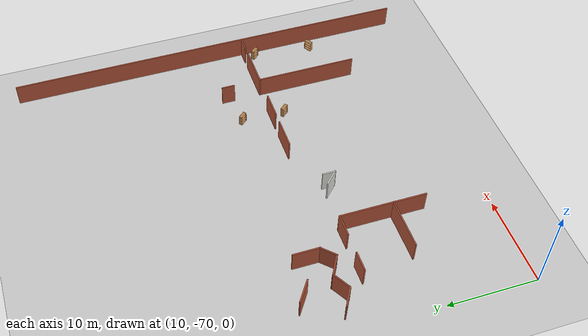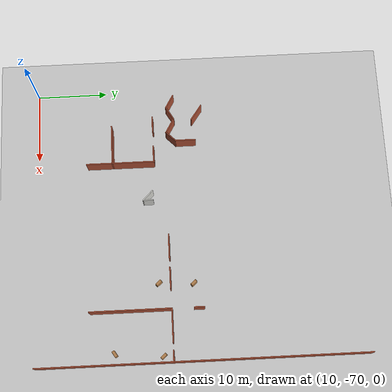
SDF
<sdf version="1.6">
 <world name="default">
  <model name="maze_rect_3">
   <pose>4e-06 -9.9e-05 0 0 -0 1.57001</pose>
   <link name="Wall_24">
    <collision name="Wall_24_Collision">
     <geometry><box><size>3 0.15 2.5</size></box></geometry>
     <pose>0 0 1.25 0 -0 0</pose>
    </collision>
    <visual name="Wall_24_Visual">
     <pose>0 0 1.25 0 -0 0</pose>
     <geometry><box><size>3 0.15 2.5</size></box></geometry>
     <material>
      <script><uri>file://media/materials/scripts/gazebo.material</uri><name>Gazebo/Bricks</name></script>
      <ambient>1 1 1 1</ambient>
     </material>
     <meta><layer>0</layer></meta>
    </visual>
    <pose>-48.4861 -18.717 0 0 -0 3.14159</pose>
   </link>
   <link name="Wall_25">
    <collision name="Wall_25_Collision">
     <geometry><box><size>2 0.15 2.5</size></box></geometry>
     <pose>0 0 1.25 0 -0 0</pose>
    </collision>
    <visual name="Wall_25_Visual">
     <pose>0 0 1.25 0 -0 0</pose>
     <geometry><box><size>2 0.15 2.5</size></box></geometry>
     <material>
      <script><uri>file://media/materials/scripts/gazebo.material</uri><name>Gazebo/Bricks</name></script>
      <ambient>1 1 1 1</ambient>
     </material>
     <meta><layer>0</layer></meta>
    </visual>
    <pose>-50.5652 -18.0629 0 0 -0 2.35619</pose>
   </link>
   <link name="Wall_26">
    <collision name="Wall_26_Collision">
     <geometry><box><size>2.5 0.15 2.5</size></box></geometry>
     <pose>0 0 1.25 0 -0 0</pose>
    </collision>
    <visual name="Wall_26_Visual">
     <pose>0 0 1.25 0 -0 0</pose>
     <geometry><box><size>2.5 0.15 2.5</size></box></geometry>
     <material>
      <script><uri>file://media/materials/scripts/gazebo.material</uri><name>Gazebo/Bricks</name></script>
      <ambient>1 1 1 1</ambient>
     </material>
     <meta><layer>0</layer></meta>
    </visual>
    <pose>-50.6318 -16.3913 0 0 -0 1.0472</pose>
   </link>
   <link name="Wall_27">
    <collision name="Wall_27_Collision">
     <geometry><box><size>2.25 0.15 2.5</size></box></geometry>
     <pose>0 0 1.25 0 -0 0</pose>
    </collision>
    <visual name="Wall_27_Visual">
     <pose>0 0 1.25 0 -0 0</pose>
     <geometry><box><size>2.25 0.15 2.5</size></box></geometry>
     <material>
      <script><uri>file://media/materials/scripts/gazebo.material</uri><name>Gazebo/Bricks</name></script>
      <ambient>1 1 1 1</ambient>
     </material>
     <meta><layer>0</layer></meta>
    </visual>
    <pose>-50.5693 -14.4644 0 0 -0 2.0944</pose>
   </link>
   <link name="Wall_28">
    <collision name="Wall_28_Collision">
     <geometry><box><size>2.25 0.15 2.5</size></box></geometry>
     <pose>0 0 1.25 0 -0 0</pose>
    </collision>
    <visual name="Wall_28_Visual">
     <pose>0 0 1.25 0 -0 0</pose>
     <geometry><box><size>2.25 0.15 2.5</size></box></geometry>
     <material>
      <script><uri>file://media/materials/scripts/gazebo.material</uri><name>Gazebo/Bricks</name></script>
      <ambient>1 1 1 1</ambient>
     </material>
     <meta><layer>0</layer></meta>
    </visual>
    <pose>-50.5693 -12.6457 0 0 -0 1.0472</pose>
   </link>
   <link name="Wall_590">
    <collision name="Wall_590_Collision">
     <geometry><box><size>2.69612 0.15 2.5</size></box></geometry>
     <pose>0 0 1.25 0 -0 0</pose>
    </collision>
    <visual name="Wall_590_Visual">
     <pose>0 0 1.25 0 -0 0</pose>
     <geometry><box><size>2.69612 0.15 2.5</size></box></geometry>
     <material>
      <script><uri>file://media/materials/scripts/gazebo.material</uri><name>Gazebo/Bricks</name></script>
      <ambient>1 1 1 1</ambient>
     </material>
     <meta><layer>0</layer></meta>
    </visual>
    <pose>-46.7323 -14.5264 0 0 -0 0.953384</pose>
   </link>
   <static>1</static>
  </model>
  <model name="map_palace_v2_model_1_0">
   <pose>-3.1e-05 -55 0 0 -0 3.14</pose>
   <link name="Wall_12">
    <collision name="Wall_12_Collision">
     <geometry><box><size>46 0.15 2.5</size></box></geometry>
     <pose>0 0 1.25 0 -0 0</pose>
    </collision>
    <visual name="Wall_12_Visual">
     <pose>0 0 1.25 0 -0 0</pose>
     <geometry><box><size>46 0.15 2.5</size></box></geometry>
     <material>
      <script><uri>file://media/materials/scripts/gazebo.material</uri><name>Gazebo/Bricks</name></script>
      <ambient>1 1 1 1</ambient>
     </material>
     <meta><layer>0</layer></meta>
    </visual>
    <pose>-50.1193 -7.67754 0 0 -0 -1.5708</pose>
   </link>
   <link name="Wall_132">
    <collision name="Wall_132_Collision">
     <geometry><box><size>1.5 0.15 2.5</size></box></geometry>
     <pose>0 0 1.25 0 -0 0</pose>
    </collision>
    <visual name="Wall_132_Visual">
     <pose>0 0 1.25 0 -0 0</pose>
     <geometry><box><size>1.5 0.15 2.5</size></box></geometry>
     <material>
      <script><uri>file://media/materials/scripts/gazebo.material</uri><name>Gazebo/Bricks</name></script>
      <ambient>1 1 1 1</ambient>
     </material>
     <meta><layer>0</layer></meta>
    </visual>
    <pose>-42.9077 -7.40915 0 0 -0 1.5708</pose>
   </link>
   <link name="Wall_136">
    <collision name="Wall_136_Collision">
     <geometry><box><size>4.75 0.15 2.5</size></box></geometry>
     <pose>0 0 1.25 0 -0 0</pose>
    </collision>
    <visual name="Wall_136_Visual">
     <pose>0 0 1.25 0 -0 0</pose>
     <geometry><box><size>4.75 0.15 2.5</size></box></geometry>
     <material>
      <script><uri>file://media/materials/scripts/gazebo.material</uri><name>Gazebo/Bricks</name></script>
      <ambient>1 1 1 1</ambient>
     </material>
     <meta><layer>0</layer></meta>
    </visual>
    <pose>-45.2077 -3.61102 0 0 -0 3.14159</pose>
   </link>
   <link name="Wall_138">
    <collision name="Wall_138_Collision">
     <geometry><box><size>1.5 0.15 2.5</size></box></geometry>
     <pose>0 0 1.25 0 -0 0</pose>
    </collision>
    <visual name="Wall_138_Visual">
     <pose>0 0 1.25 0 -0 0</pose>
     <geometry><box><size>1.5 0.15 2.5</size></box></geometry>
     <material>
      <script><uri>file://media/materials/scripts/gazebo.material</uri><name>Gazebo/Bricks</name></script>
      <ambient>1 1 1 1</ambient>
     </material>
     <meta><layer>0</layer></meta>
    </visual>
    <pose>-49.2827 -3.61102 0 0 -0 3.14159</pose>
   </link>
   <link name="Wall_179">
    <collision name="Wall_179_Collision">
     <geometry><box><size>3.5 0.15 2.5</size></box></geometry>
     <pose>0 0 1.25 0 -0 0</pose>
    </collision>
    <visual name="Wall_179_Visual">
     <pose>0 0 1.25 0 -0 0</pose>
     <geometry><box><size>3.5 0.15 2.5</size></box></geometry>
     <material>
      <script><uri>file://media/materials/scripts/gazebo.material</uri><name>Gazebo/Bricks</name></script>
      <ambient>1 1 1 1</ambient>
     </material>
     <meta><layer>0</layer></meta>
    </visual>
    <pose>-34.228 -3.55604 0 0 -0 3.14159</pose>
   </link>
   <link name="Wall_18">
    <collision name="Wall_18_Collision">
     <geometry><box><size>9.75 0.15 2.5</size></box></geometry>
     <pose>0 0 1.25 0 -0 0</pose>
    </collision>
    <visual name="Wall_18_Visual">
     <pose>0 0 1.25 0 -0 0</pose>
     <geometry><box><size>9.75 0.15 2.5</size></box></geometry>
     <material>
      <script><uri>file://media/materials/scripts/gazebo.material</uri><name>Gazebo/Bricks</name></script>
      <ambient>1 1 1 1</ambient>
     </material>
     <meta><layer>0</layer></meta>
    </visual>
    <pose>-21.7193 2.94746 0 0 -0 -1.5708</pose>
   </link>
   <link name="Wall_181">
    <collision name="Wall_181_Collision">
     <geometry><box><size>3 0.15 2.5</size></box></geometry>
     <pose>0 0 1.25 0 -0 0</pose>
    </collision>
    <visual name="Wall_181_Visual">
     <pose>0 0 1.25 0 -0 0</pose>
     <geometry><box><size>3 0.15 2.5</size></box></geometry>
     <material>
      <script><uri>file://media/materials/scripts/gazebo.material</uri><name>Gazebo/Bricks</name></script>
      <ambient>1 1 1 1</ambient>
     </material>
     <meta><layer>0</layer></meta>
    </visual>
    <pose>-38.678 -3.55604 0 0 -0 3.14159</pose>
   </link>
   <link name="Wall_19">
    <collision name="Wall_19_Collision">
     <geometry><box><size>2.5 0.15 2.5</size></box></geometry>
     <pose>0 0 1.25 0 -0 0</pose>
    </collision>
    <visual name="Wall_19_Visual">
     <pose>0 0 1.25 0 -0 0</pose>
     <geometry><box><size>2.5 0.15 2.5</size></box></geometry>
     <material>
      <script><uri>file://media/materials/scripts/gazebo.material</uri><name>Gazebo/Bricks</name></script>
      <ambient>1 1 1 1</ambient>
     </material>
     <meta><layer>0</layer></meta>
    </visual>
    <pose>-20.5443 -1.85254 0 0 -0 0</pose>
   </link>
   <link name="Wall_198">
    <collision name="Wall_198_Collision">
     <geometry><box><size>5.75 0.15 2.5</size></box></geometry>
     <pose>0 0 1.25 0 -0 0</pose>
    </collision>
    <visual name="Wall_198_Visual">
     <pose>0 0 1.25 0 -0 0</pose>
     <geometry><box><size>5.75 0.15 2.5</size></box></geometry>
     <material>
      <script><uri>file://media/materials/scripts/gazebo.material</uri><name>Gazebo/Bricks</name></script>
      <ambient>1 1 1 1</ambient>
     </material>
     <meta><layer>0</layer></meta>
    </visual>
    <pose>-18.9274 4.09535 0 0 -0 0</pose>
   </link>
   <link name="Wall_21">
    <collision name="Wall_21_Collision">
     <geometry><box><size>2.25 0.15 2.5</size></box></geometry>
     <pose>0 0 1.25 0 -0 0</pose>
    </collision>
    <visual name="Wall_21_Visual">
     <pose>0 0 1.25 0 -0 0</pose>
     <geometry><box><size>2.25 0.15 2.5</size></box></geometry>
     <material>
      <script><uri>file://media/materials/scripts/gazebo.material</uri><name>Gazebo/Bricks</name></script>
      <ambient>1 1 1 1</ambient>
     </material>
     <meta><layer>0</layer></meta>
    </visual>
    <pose>-15.9693 -1.85254 0 0 -0 0</pose>
   </link>
   <link name="Wall_96">
    <collision name="Wall_96_Collision">
     <geometry><box><size>11.5 0.15 2.5</size></box></geometry>
     <pose>0 0 1.25 0 -0 0</pose>
    </collision>
    <visual name="Wall_96_Visual">
     <pose>0 0 1.25 0 -0 0</pose>
     <geometry><box><size>11.5 0.15 2.5</size></box></geometry>
     <material>
      <script><uri>file://media/materials/scripts/gazebo.material</uri><name>Gazebo/Bricks</name></script>
      <ambient>1 1 1 1</ambient>
     </material>
     <meta><layer>0</layer></meta>
    </visual>
    <pose>-42.9077 2.06398 0 0 -0 -1.5708</pose>
   </link>
   <static>1</static>
  </model>
  <model name="bookshelf_clone_1_clone_1">
   <static>1</static>
   <link name="link">
    <inertial><mass>1</mass></inertial>
    <collision name="back">
     <pose>0 0.005 0.6 0 -0 0</pose>
     <geometry><box><size>0.9 0.01 1.2</size></box></geometry>
    </collision>
    <visual name="visual1">
     <pose>0 0.005 0.6 0 -0 0</pose>
     <geometry><box><size>0.9 0.01 1.2</size></box></geometry>
     <material>
      <script><uri>file://media/materials/scripts/gazebo.material</uri><name>Gazebo/Wood</name></script>
     </material>
    </visual>
    <collision name="left_side">
     <pose>0.45 -0.195 0.6 0 -0 0</pose>
     <geometry><box><size>0.02 0.4 1.2</size></box></geometry>
    </collision>
    <visual name="visual2">
     <pose>0.45 -0.195 0.6 0 -0 0</pose>
     <geometry><box><size>0.02 0.4 1.2</size></box></geometry>
     <material>
      <script><uri>file://media/materials/scripts/gazebo.material</uri><name>Gazebo/Wood</name></script>
     </material>
    </visual>
    <collision name="right_side">
     <pose>-0.45 -0.195 0.6 0 -0 0</pose>
     <geometry><box><size>0.02 0.4 1.2</size></box></geometry>
    </collision>
    <visual name="visual3">
     <pose>-0.45 -0.195 0.6 0 -0 0</pose>
     <geometry><box><size>0.02 0.4 1.2</size></box></geometry>
     <material>
      <script><uri>file://media/materials/scripts/gazebo.material</uri><name>Gazebo/Wood</name></script>
     </material>
    </visual>
    <collision name="bottom">
     <pose>0 -0.195 0.03 0 -0 0</pose>
     <geometry><box><size>0.88 0.4 0.06</size></box></geometry>
    </collision>
    <visual name="visual4">
     <pose>0 -0.195 0.03 0 -0 0</pose>
     <geometry><box><size>0.88 0.4 0.06</size></box></geometry>
     <material>
      <script><uri>file://media/materials/scripts/gazebo.material</uri><name>Gazebo/Wood</name></script>
     </material>
    </visual>
    <collision name="top">
     <pose>0 -0.195 1.19 0 -0 0</pose>
     <geometry><box><size>0.88 0.4 0.02</size></box></geometry>
    </collision>
    <visual name="visual5">
     <pose>0 -0.195 1.19 0 -0 0</pose>
     <geometry><box><size>0.88 0.4 0.02</size></box></geometry>
     <material>
      <script><uri>file://media/materials/scripts/gazebo.material</uri><name>Gazebo/Wood</name></script>
     </material>
    </visual>
    <collision name="low_shelf">
     <pose>0 -0.195 0.43 0 -0 0</pose>
     <geometry><box><size>0.88 0.4 0.02</size></box></geometry>
    </collision>
    <visual name="visual6">
     <pose>0 -0.195 0.43 0 -0 0</pose>
     <geometry><box><size>0.88 0.4 0.02</size></box></geometry>
     <material>
      <script><uri>file://media/materials/scripts/gazebo.material</uri><name>Gazebo/Wood</name></script>
     </material>
    </visual>
    <collision name="high_shelf">
     <pose>0 -0.195 0.8 0 -0 0</pose>
     <geometry><box><size>0.88 0.4 0.02</size></box></geometry>
    </collision>
    <visual name="visual7">
     <pose>0 -0.195 0.8 0 -0 0</pose>
     <geometry><box><size>0.88 0.4 0.02</size></box></geometry>
     <material>
      <script><uri>file://media/materials/scripts/gazebo.material</uri><name>Gazebo/Wood</name></script>
     </material>
    </visual>
   </link>
   <pose>39.257 -53.0439 0 0 0 -0.862924</pose>
  </model>
  <model name="bookshelf_clone_1_clone_1_clone_0">
   <static>1</static>
   <link name="link">
    <inertial><mass>1</mass></inertial>
    <collision name="back">
     <pose>0 0.005 0.6 0 -0 0</pose>
     <geometry><box><size>0.9 0.01 1.2</size></box></geometry>
    </collision>
    <visual name="visual1">
     <pose>0 0.005 0.6 0 -0 0</pose>
     <geometry><box><size>0.9 0.01 1.2</size></box></geometry>
     <material>
      <script><uri>file://media/materials/scripts/gazebo.material</uri><name>Gazebo/Wood</name></script>
     </material>
    </visual>
    <collision name="left_side">
     <pose>0.45 -0.195 0.6 0 -0 0</pose>
     <geometry><box><size>0.02 0.4 1.2</size></box></geometry>
    </collision>
    <visual name="visual2">
     <pose>0.45 -0.195 0.6 0 -0 0</pose>
     <geometry><box><size>0.02 0.4 1.2</size></box></geometry>
     <material>
      <script><uri>file://media/materials/scripts/gazebo.material</uri><name>Gazebo/Wood</name></script>
     </material>
    </visual>
    <collision name="right_side">
     <pose>-0.45 -0.195 0.6 0 -0 0</pose>
     <geometry><box><size>0.02 0.4 1.2</size></box></geometry>
    </collision>
    <visual name="visual3">
     <pose>-0.45 -0.195 0.6 0 -0 0</pose>
     <geometry><box><size>0.02 0.4 1.2</size></box></geometry>
     <material>
      <script><uri>file://media/materials/scripts/gazebo.material</uri><name>Gazebo/Wood</name></script>
     </material>
    </visual>
    <collision name="bottom">
     <pose>0 -0.195 0.03 0 -0 0</pose>
     <geometry><box><size>0.88 0.4 0.06</size></box></geometry>
    </collision>
    <visual name="visual4">
     <pose>0 -0.195 0.03 0 -0 0</pose>
     <geometry><box><size>0.88 0.4 0.06</size></box></geometry>
     <material>
      <script><uri>file://media/materials/scripts/gazebo.material</uri><name>Gazebo/Wood</name></script>
     </material>
    </visual>
    <collision name="top">
     <pose>0 -0.195 1.19 0 -0 0</pose>
     <geometry><box><size>0.88 0.4 0.02</size></box></geometry>
    </collision>
    <visual name="visual5">
     <pose>0 -0.195 1.19 0 -0 0</pose>
     <geometry><box><size>0.88 0.4 0.02</size></box></geometry>
     <material>
      <script><uri>file://media/materials/scripts/gazebo.material</uri><name>Gazebo/Wood</name></script>
     </material>
    </visual>
    <collision name="low_shelf">
     <pose>0 -0.195 0.43 0 -0 0</pose>
     <geometry><box><size>0.88 0.4 0.02</size></box></geometry>
    </collision>
    <visual name="visual6">
     <pose>0 -0.195 0.43 0 -0 0</pose>
     <geometry><box><size>0.88 0.4 0.02</size></box></geometry>
     <material>
      <script><uri>file://media/materials/scripts/gazebo.material</uri><name>Gazebo/Wood</name></script>
     </material>
    </visual>
    <collision name="high_shelf">
     <pose>0 -0.195 0.8 0 -0 0</pose>
     <geometry><box><size>0.88 0.4 0.02</size></box></geometry>
    </collision>
    <visual name="visual7">
     <pose>0 -0.195 0.8 0 -0 0</pose>
     <geometry><box><size>0.88 0.4 0.02</size></box></geometry>
     <material>
      <script><uri>file://media/materials/scripts/gazebo.material</uri><name>Gazebo/Wood</name></script>
     </material>
    </visual>
   </link>
   <pose>49.3682 -52.7157 0 0 0 -0.862924</pose>
  </model>
  <model name="bookshelf_clone_1_clone_1_clone_1">
   <static>1</static>
   <link name="link">
    <inertial><mass>1</mass></inertial>
    <collision name="back">
     <pose>0 0.005 0.6 0 -0 0</pose>
     <geometry><box><size>0.9 0.01 1.2</size></box></geometry>
    </collision>
    <visual name="visual1">
     <pose>0 0.005 0.6 0 -0 0</pose>
     <geometry><box><size>0.9 0.01 1.2</size></box></geometry>
     <material>
      <script><uri>file://media/materials/scripts/gazebo.material</uri><name>Gazebo/Wood</name></script>
     </material>
    </visual>
    <collision name="left_side">
     <pose>0.45 -0.195 0.6 0 -0 0</pose>
     <geometry><box><size>0.02 0.4 1.2</size></box></geometry>
    </collision>
    <visual name="visual2">
     <pose>0.45 -0.195 0.6 0 -0 0</pose>
     <geometry><box><size>0.02 0.4 1.2</size></box></geometry>
     <material>
      <script><uri>file://media/materials/scripts/gazebo.material</uri><name>Gazebo/Wood</name></script>
     </material>
    </visual>
    <collision name="right_side">
     <pose>-0.45 -0.195 0.6 0 -0 0</pose>
     <geometry><box><size>0.02 0.4 1.2</size></box></geometry>
    </collision>
    <visual name="visual3">
     <pose>-0.45 -0.195 0.6 0 -0 0</pose>
     <geometry><box><size>0.02 0.4 1.2</size></box></geometry>
     <material>
      <script><uri>file://media/materials/scripts/gazebo.material</uri><name>Gazebo/Wood</name></script>
     </material>
    </visual>
    <collision name="bottom">
     <pose>0 -0.195 0.03 0 -0 0</pose>
     <geometry><box><size>0.88 0.4 0.06</size></box></geometry>
    </collision>
    <visual name="visual4">
     <pose>0 -0.195 0.03 0 -0 0</pose>
     <geometry><box><size>0.88 0.4 0.06</size></box></geometry>
     <material>
      <script><uri>file://media/materials/scripts/gazebo.material</uri><name>Gazebo/Wood</name></script>
     </material>
    </visual>
    <collision name="top">
     <pose>0 -0.195 1.19 0 -0 0</pose>
     <geometry><box><size>0.88 0.4 0.02</size></box></geometry>
    </collision>
    <visual name="visual5">
     <pose>0 -0.195 1.19 0 -0 0</pose>
     <geometry><box><size>0.88 0.4 0.02</size></box></geometry>
     <material>
      <script><uri>file://media/materials/scripts/gazebo.material</uri><name>Gazebo/Wood</name></script>
     </material>
    </visual>
    <collision name="low_shelf">
     <pose>0 -0.195 0.43 0 -0 0</pose>
     <geometry><box><size>0.88 0.4 0.02</size></box></geometry>
    </collision>
    <visual name="visual6">
     <pose>0 -0.195 0.43 0 -0 0</pose>
     <geometry><box><size>0.88 0.4 0.02</size></box></geometry>
     <material>
      <script><uri>file://media/materials/scripts/gazebo.material</uri><name>Gazebo/Wood</name></script>
     </material>
    </visual>
    <collision name="high_shelf">
     <pose>0 -0.195 0.8 0 -0 0</pose>
     <geometry><box><size>0.88 0.4 0.02</size></box></geometry>
    </collision>
    <visual name="visual7">
     <pose>0 -0.195 0.8 0 -0 0</pose>
     <geometry><box><size>0.88 0.4 0.02</size></box></geometry>
     <material>
      <script><uri>file://media/materials/scripts/gazebo.material</uri><name>Gazebo/Wood</name></script>
     </material>
    </visual>
   </link>
   <pose>39.4716 -48.1434 0 0 0 -0.862924</pose>
  </model>
  <model name="bookshelf_clone_1_clone_1_clone_0_clone">
   <static>1</static>
   <link name="link">
    <inertial><mass>1</mass></inertial>
    <collision name="back">
     <pose>0 0.005 0.6 0 -0 0</pose>
     <geometry><box><size>0.9 0.01 1.2</size></box></geometry>
    </collision>
    <visual name="visual1">
     <pose>0 0.005 0.6 0 -0 0</pose>
     <geometry><box><size>0.9 0.01 1.2</size></box></geometry>
     <material>
      <script><uri>file://media/materials/scripts/gazebo.material</uri><name>Gazebo/Wood</name></script>
     </material>
    </visual>
    <collision name="left_side">
     <pose>0.45 -0.195 0.6 0 -0 0</pose>
     <geometry><box><size>0.02 0.4 1.2</size></box></geometry>
    </collision>
    <visual name="visual2">
     <pose>0.45 -0.195 0.6 0 -0 0</pose>
     <geometry><box><size>0.02 0.4 1.2</size></box></geometry>
     <material>
      <script><uri>file://media/materials/scripts/gazebo.material</uri><name>Gazebo/Wood</name></script>
     </material>
    </visual>
    <collision name="right_side">
     <pose>-0.45 -0.195 0.6 0 -0 0</pose>
     <geometry><box><size>0.02 0.4 1.2</size></box></geometry>
    </collision>
    <visual name="visual3">
     <pose>-0.45 -0.195 0.6 0 -0 0</pose>
     <geometry><box><size>0.02 0.4 1.2</size></box></geometry>
     <material>
      <script><uri>file://media/materials/scripts/gazebo.material</uri><name>Gazebo/Wood</name></script>
     </material>
    </visual>
    <collision name="bottom">
     <pose>0 -0.195 0.03 0 -0 0</pose>
     <geometry><box><size>0.88 0.4 0.06</size></box></geometry>
    </collision>
    <visual name="visual4">
     <pose>0 -0.195 0.03 0 -0 0</pose>
     <geometry><box><size>0.88 0.4 0.06</size></box></geometry>
     <material>
      <script><uri>file://media/materials/scripts/gazebo.material</uri><name>Gazebo/Wood</name></script>
     </material>
    </visual>
    <collision name="top">
     <pose>0 -0.195 1.19 0 -0 0</pose>
     <geometry><box><size>0.88 0.4 0.02</size></box></geometry>
    </collision>
    <visual name="visual5">
     <pose>0 -0.195 1.19 0 -0 0</pose>
     <geometry><box><size>0.88 0.4 0.02</size></box></geometry>
     <material>
      <script><uri>file://media/materials/scripts/gazebo.material</uri><name>Gazebo/Wood</name></script>
     </material>
    </visual>
    <collision name="low_shelf">
     <pose>0 -0.195 0.43 0 -0 0</pose>
     <geometry><box><size>0.88 0.4 0.02</size></box></geometry>
    </collision>
    <visual name="visual6">
     <pose>0 -0.195 0.43 0 -0 0</pose>
     <geometry><box><size>0.88 0.4 0.02</size></box></geometry>
     <material>
      <script><uri>file://media/materials/scripts/gazebo.material</uri><name>Gazebo/Wood</name></script>
     </material>
    </visual>
    <collision name="high_shelf">
     <pose>0 -0.195 0.8 0 -0 0</pose>
     <geometry><box><size>0.88 0.4 0.02</size></box></geometry>
    </collision>
    <visual name="visual7">
     <pose>0 -0.195 0.8 0 -0 0</pose>
     <geometry><box><size>0.88 0.4 0.02</size></box></geometry>
     <material>
      <script><uri>file://media/materials/scripts/gazebo.material</uri><name>Gazebo/Wood</name></script>
     </material>
    </visual>
   </link>
   <pose>48.704 -59.7064 0 0 0 -2.59294</pose>
  </model>
  <model name="v_wall_1">
   <pose>26.7586 -54.2008 0 0 -0 0</pose>
   <link name="Wall_0">
    <collision name="Wall_0_Collision">
     <geometry><box><size>2 0.15 2.5</size></box></geometry>
     <pose>0 0 1.25 0 -0 0</pose>
    </collision>
    <visual name="Wall_0_Visual">
     <pose>0 0 1.25 0 -0 0</pose>
     <geometry><box><size>2 0.15 2.5</size></box></geometry>
     <material>
      <script><uri>file://media/materials/scripts/gazebo.material</uri><name>Gazebo/CeilingTiled</name></script>
      <ambient>1 1 1 1</ambient>
     </material>
     <meta><layer>0</layer></meta>
    </visual>
    <pose>0 -0.005393 0 0 -0 -0.785398</pose>
   </link>
   <link name="Wall_1">
    <collision name="Wall_1_Collision">
     <geometry><box><size>1.5 0.15 2.5</size></box></geometry>
     <pose>0 0 1.25 0 -0 0</pose>
    </collision>
    <visual name="Wall_1_Visual">
     <pose>0 0 1.25 0 -0 0</pose>
     <geometry><box><size>1.5 0.15 2.5</size></box></geometry>
     <material>
      <script><uri>file://media/materials/scripts/gazebo.material</uri><name>Gazebo/CeilingTiled</name></script>
      <ambient>1 1 1 1</ambient>
     </material>
     <meta><layer>0</layer></meta>
    </visual>
    <pose>0.654074 0.015533 0 0 -0 1.5708</pose>
   </link>
   <static>1</static>
  </model>
  <model name="ground_plane">
   <static>1</static>
   <link name="link">
    <collision name="collision">
     <geometry><plane><normal>0 0 1</normal><size>100 100</size></plane></geometry>
     <surface>
      <contact><collide_bitmask>65535</collide_bitmask></contact>
      <friction><ode><mu>100</mu><mu2>50</mu2></ode></friction>
     </surface>
    </collision>
    <visual name="visual">
     <cast_shadows>0</cast_shadows>
     <geometry><plane><normal>0 0 1</normal><size>100 100</size></plane></geometry>
     <material>
      <script><uri>file://media/materials/scripts/gazebo.material</uri><name>Gazebo/Grey</name></script>
     </material>
    </visual>
   </link>
   <pose>9.31394 52.073 0 0 -0 0</pose>
  </model>
 </world>
</sdf>
